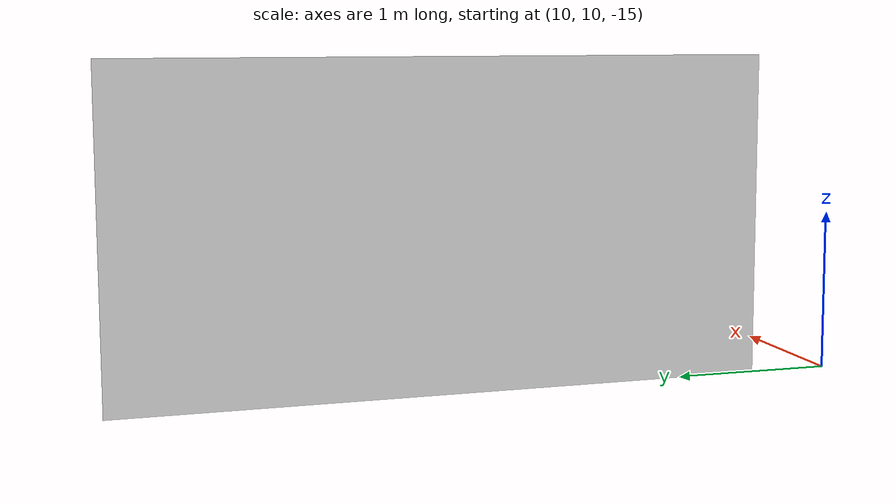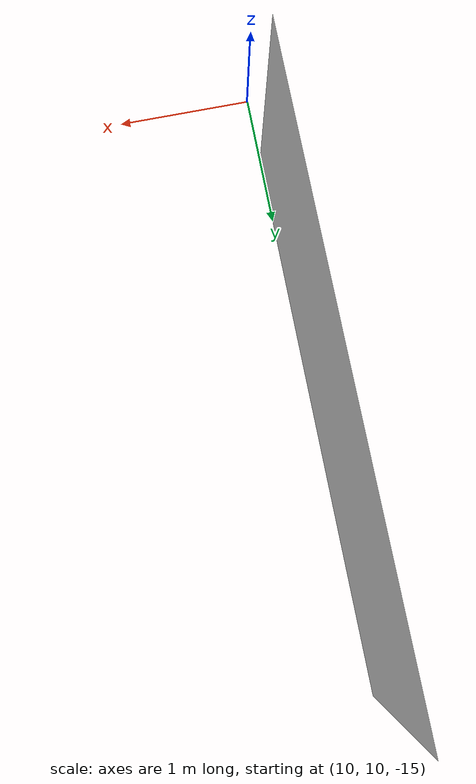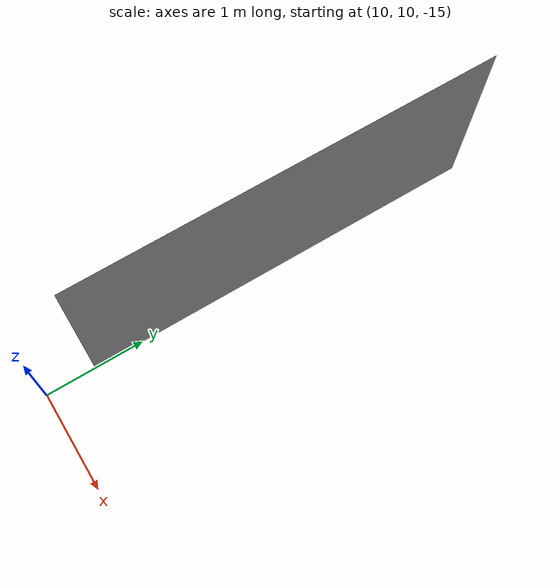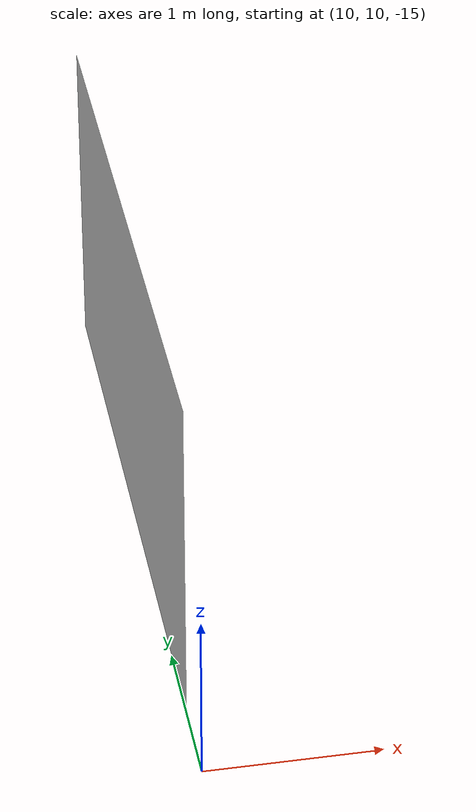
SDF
<?xml version='1.0' encoding='UTF8'?>
<sdf version="1.6">
  <model name="Stannis">
    <pose>10 12.5 -13 0 0 0</pose>
    <static>true</static>
    <link name="link">
      <visual name="visual">
        <geometry>
          <mesh>
            <uri>model://rover_sim/models/names/Stannis/meshes/mesh_name.dae</uri>
          </mesh>
        </geometry>
      </visual>
    </link>
  </model>
</sdf>
